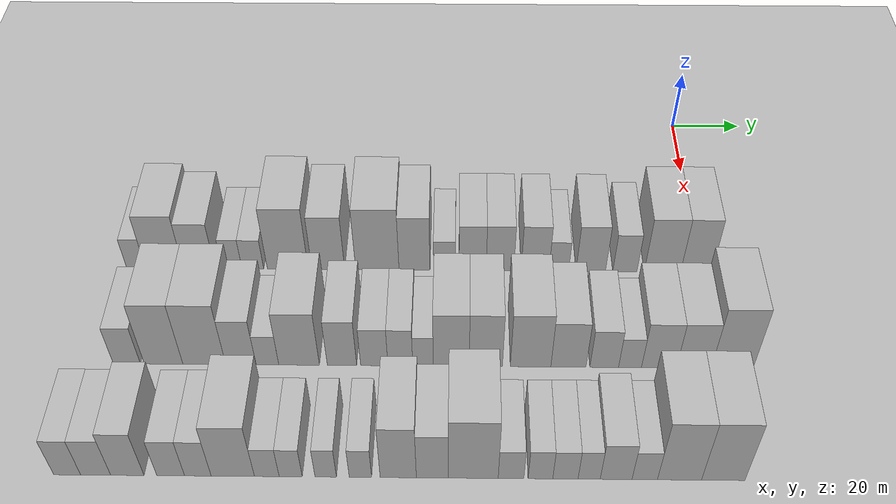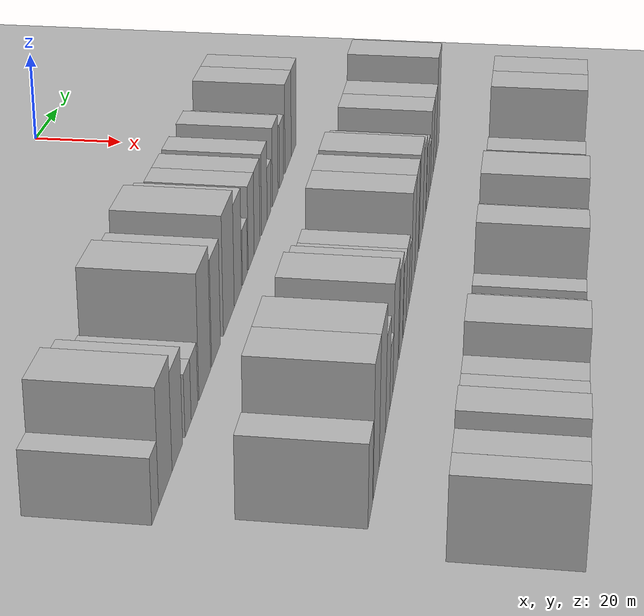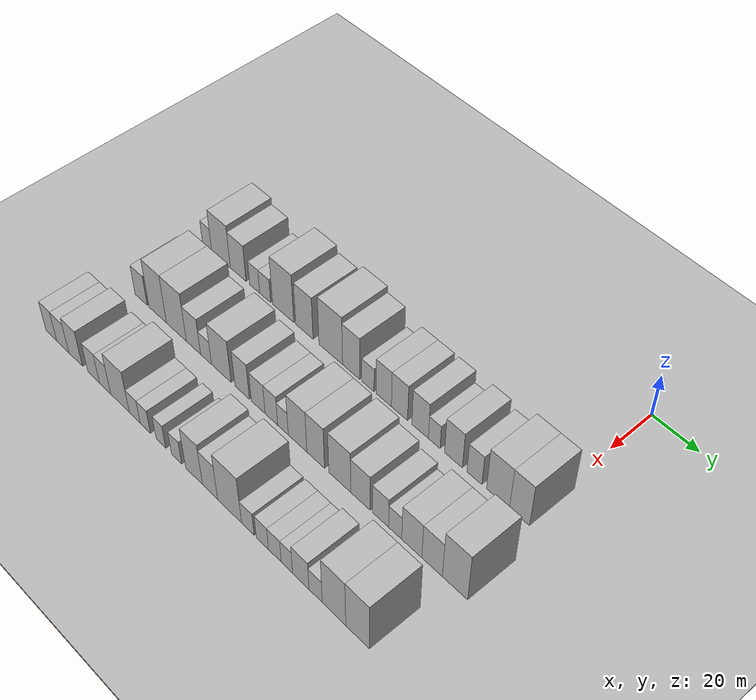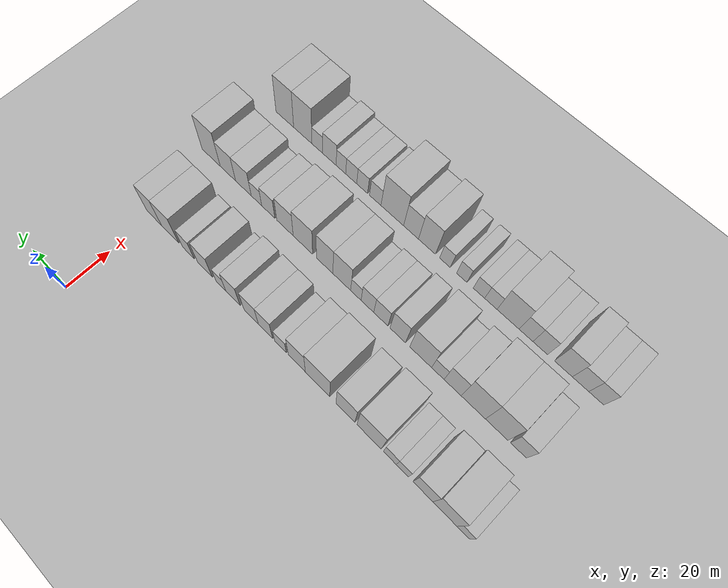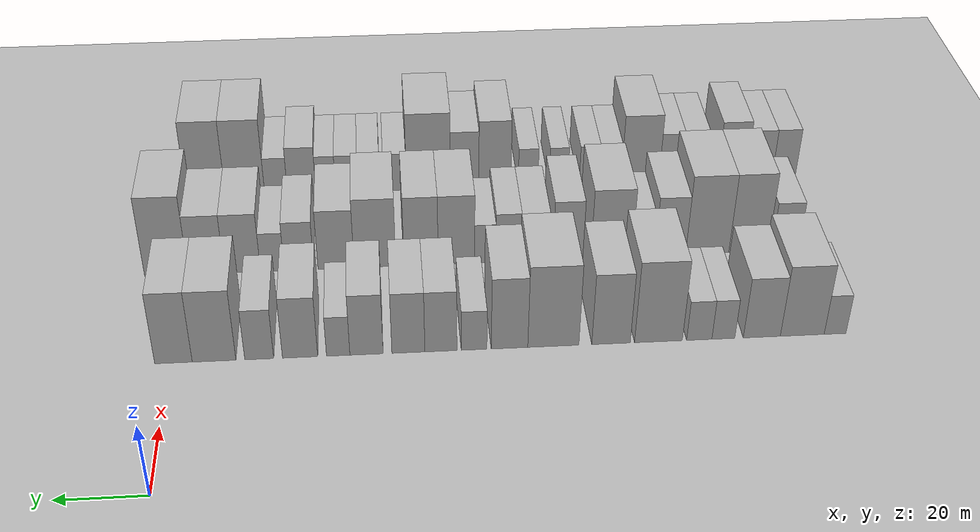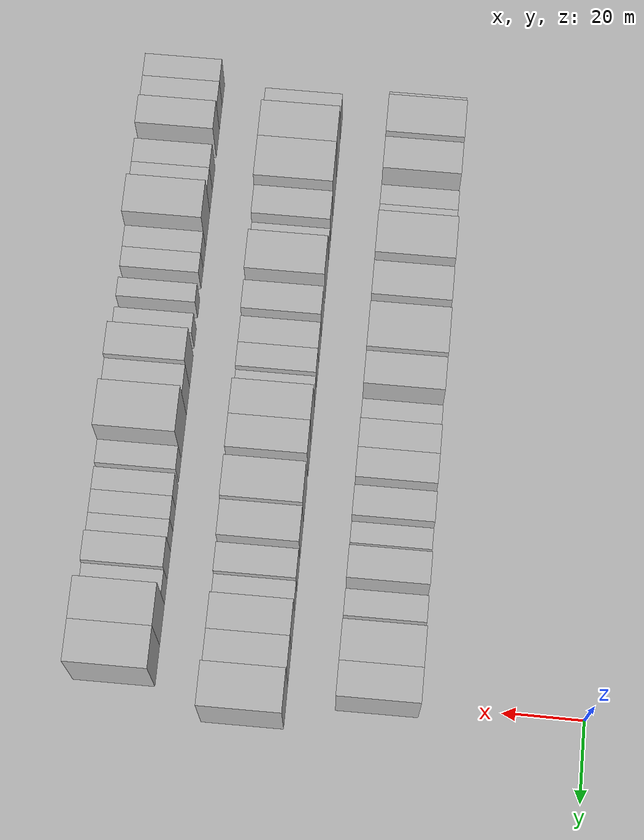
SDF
<sdf version="1.6">
 <world name="default">
  <include><name>ground_plane_1</name><uri>model://HANNAS_ground_plane</uri></include>
  <include>
   <name>ground_plane_2</name>
   <uri>model://HANNAS_ground_plane</uri>
   <pose>100 0 0  0 0 0</pose>
  </include>
  <model name="building_20">
   <static>1</static>
   <pose>50.0000 -154.2095 0 0.000000 0.000000 0.000000</pose>
   <link name="link">
    <pose>0 0 6.00 0 0 0</pose>
    <collision name="collision"><geometry><box><size>20.0000 5.1648 12.0000</size></box></geometry></collision>
    <visual name="visual">
     <cast_shadows>0</cast_shadows>
     <geometry><box><size>20.0000 5.1648 12.0000</size></box></geometry>
     <material>
      <script>
       <uri>model://HANNAS_wall/materials/scripts</uri>
       <uri>model://HANNAS_wall/materials/textures</uri>
       <name>vrc/HANNAS_wall</name>
      </script>
     </material>
    </visual>
   </link>
  </model>
  <model name="building_21">
   <static>1</static>
   <pose>50.0000 -146.4476 0 0.000000 0.000000 0.000000</pose>
   <link name="link">
    <pose>0 0 10.50 0 0 0</pose>
    <collision name="collision"><geometry><box><size>20.0000 10.3590 21.0000</size></box></geometry></collision>
    <visual name="visual">
     <cast_shadows>0</cast_shadows>
     <geometry><box><size>20.0000 10.3590 21.0000</size></box></geometry>
     <material>
      <script>
       <uri>model://HANNAS_wall/materials/scripts</uri>
       <uri>model://HANNAS_wall/materials/textures</uri>
       <name>vrc/HANNAS_wall</name>
      </script>
     </material>
    </visual>
   </link>
  </model>
  <model name="building_22">
   <static>1</static>
   <pose>50.0000 -136.9154 0 0.000000 0.000000 0.000000</pose>
   <link name="link">
    <pose>0 0 9.00 0 0 0</pose>
    <collision name="collision"><geometry><box><size>20.0000 8.7054 18.0000</size></box></geometry></collision>
    <visual name="visual">
     <cast_shadows>0</cast_shadows>
     <geometry><box><size>20.0000 8.7054 18.0000</size></box></geometry>
     <material>
      <script>
       <uri>model://HANNAS_wall/materials/scripts</uri>
       <uri>model://HANNAS_wall/materials/textures</uri>
       <name>vrc/HANNAS_wall</name>
      </script>
     </material>
    </visual>
   </link>
  </model>
  <model name="building_23">
   <static>1</static>
   <pose>50.0000 -127.8699 0 0.000000 0.000000 0.000000</pose>
   <link name="link">
    <pose>0 0 6.00 0 0 0</pose>
    <collision name="collision"><geometry><box><size>20.0000 5.3856 12.0000</size></box></geometry></collision>
    <visual name="visual">
     <cast_shadows>0</cast_shadows>
     <geometry><box><size>20.0000 5.3856 12.0000</size></box></geometry>
     <material>
      <script>
       <uri>model://HANNAS_wall/materials/scripts</uri>
       <uri>model://HANNAS_wall/materials/textures</uri>
       <name>vrc/HANNAS_wall</name>
      </script>
     </material>
    </visual>
   </link>
  </model>
  <model name="building_24">
   <static>1</static>
   <pose>50.0000 -122.2185 0 0.000000 0.000000 0.000000</pose>
   <link name="link">
    <pose>0 0 6.00 0 0 0</pose>
    <collision name="collision"><geometry><box><size>20.0000 5.9172 12.0000</size></box></geometry></collision>
    <visual name="visual">
     <cast_shadows>0</cast_shadows>
     <geometry><box><size>20.0000 5.9172 12.0000</size></box></geometry>
     <material>
      <script>
       <uri>model://HANNAS_wall/materials/scripts</uri>
       <uri>model://HANNAS_wall/materials/textures</uri>
       <name>vrc/HANNAS_wall</name>
      </script>
     </material>
    </visual>
   </link>
  </model>
  <model name="building_25">
   <static>1</static>
   <pose>50.0000 -112.6740 0 0.000000 0.000000 0.000000</pose>
   <link name="link">
    <pose>0 0 12.00 0 0 0</pose>
    <collision name="collision"><geometry><box><size>20.0000 11.1717 24.0000</size></box></geometry></collision>
    <visual name="visual">
     <cast_shadows>0</cast_shadows>
     <geometry><box><size>20.0000 11.1717 24.0000</size></box></geometry>
     <material>
      <script>
       <uri>model://HANNAS_wall/materials/scripts</uri>
       <uri>model://HANNAS_wall/materials/textures</uri>
       <name>vrc/HANNAS_wall</name>
      </script>
     </material>
    </visual>
   </link>
  </model>
  <model name="building_26">
   <static>1</static>
   <pose>50.0000 -101.6090 0 0.000000 0.000000 0.000000</pose>
   <link name="link">
    <pose>0 0 10.50 0 0 0</pose>
    <collision name="collision"><geometry><box><size>20.0000 8.9583 21.0000</size></box></geometry></collision>
    <visual name="visual">
     <cast_shadows>0</cast_shadows>
     <geometry><box><size>20.0000 8.9583 21.0000</size></box></geometry>
     <material>
      <script>
       <uri>model://HANNAS_wall/materials/scripts</uri>
       <uri>model://HANNAS_wall/materials/textures</uri>
       <name>vrc/HANNAS_wall</name>
      </script>
     </material>
    </visual>
   </link>
  </model>
  <model name="building_27">
   <static>1</static>
   <pose>50.0000 -88.2075 0 0.000000 0.000000 0.000000</pose>
   <link name="link">
    <pose>0 0 12.00 0 0 0</pose>
    <collision name="collision"><geometry><box><size>20.0000 11.8447 24.0000</size></box></geometry></collision>
    <visual name="visual">
     <cast_shadows>0</cast_shadows>
     <geometry><box><size>20.0000 11.8447 24.0000</size></box></geometry>
     <material>
      <script>
       <uri>model://HANNAS_wall/materials/scripts</uri>
       <uri>model://HANNAS_wall/materials/textures</uri>
       <name>vrc/HANNAS_wall</name>
      </script>
     </material>
    </visual>
   </link>
  </model>
  <model name="building_28">
   <static>1</static>
   <pose>50.0000 -78.0572 0 0.000000 0.000000 0.000000</pose>
   <link name="link">
    <pose>0 0 10.50 0 0 0</pose>
    <collision name="collision"><geometry><box><size>20.0000 8.4559 21.0000</size></box></geometry></collision>
    <visual name="visual">
     <cast_shadows>0</cast_shadows>
     <geometry><box><size>20.0000 8.4559 21.0000</size></box></geometry>
     <material>
      <script>
       <uri>model://HANNAS_wall/materials/scripts</uri>
       <uri>model://HANNAS_wall/materials/textures</uri>
       <name>vrc/HANNAS_wall</name>
      </script>
     </material>
    </visual>
   </link>
  </model>
  <model name="building_29">
   <static>1</static>
   <pose>50.0000 -69.8755 0 0.000000 0.000000 0.000000</pose>
   <link name="link">
    <pose>0 0 6.00 0 0 0</pose>
    <collision name="collision"><geometry><box><size>20.0000 5.9075 12.0000</size></box></geometry></collision>
    <visual name="visual">
     <cast_shadows>0</cast_shadows>
     <geometry><box><size>20.0000 5.9075 12.0000</size></box></geometry>
     <material>
      <script>
       <uri>model://HANNAS_wall/materials/scripts</uri>
       <uri>model://HANNAS_wall/materials/textures</uri>
       <name>vrc/HANNAS_wall</name>
      </script>
     </material>
    </visual>
   </link>
  </model>
  <model name="building_30">
   <static>1</static>
   <pose>50.0000 -62.2348 0 0.000000 0.000000 0.000000</pose>
   <link name="link">
    <pose>0 0 9.00 0 0 0</pose>
    <collision name="collision"><geometry><box><size>20.0000 7.3739 18.0000</size></box></geometry></collision>
    <visual name="visual">
     <cast_shadows>0</cast_shadows>
     <geometry><box><size>20.0000 7.3739 18.0000</size></box></geometry>
     <material>
      <script>
       <uri>model://HANNAS_wall/materials/scripts</uri>
       <uri>model://HANNAS_wall/materials/textures</uri>
       <name>vrc/HANNAS_wall</name>
      </script>
     </material>
    </visual>
   </link>
  </model>
  <model name="building_31">
   <static>1</static>
   <pose>50.0000 -54.7621 0 0.000000 0.000000 0.000000</pose>
   <link name="link">
    <pose>0 0 9.00 0 0 0</pose>
    <collision name="collision"><geometry><box><size>20.0000 7.5714 18.0000</size></box></geometry></collision>
    <visual name="visual">
     <cast_shadows>0</cast_shadows>
     <geometry><box><size>20.0000 7.5714 18.0000</size></box></geometry>
     <material>
      <script>
       <uri>model://HANNAS_wall/materials/scripts</uri>
       <uri>model://HANNAS_wall/materials/textures</uri>
       <name>vrc/HANNAS_wall</name>
      </script>
     </material>
    </visual>
   </link>
  </model>
  <model name="building_32">
   <static>1</static>
   <pose>50.0000 -45.1714 0 0.000000 0.000000 0.000000</pose>
   <link name="link">
    <pose>0 0 9.00 0 0 0</pose>
    <collision name="collision"><geometry><box><size>20.0000 7.6100 18.0000</size></box></geometry></collision>
    <visual name="visual">
     <cast_shadows>0</cast_shadows>
     <geometry><box><size>20.0000 7.6100 18.0000</size></box></geometry>
     <material>
      <script>
       <uri>model://HANNAS_wall/materials/scripts</uri>
       <uri>model://HANNAS_wall/materials/textures</uri>
       <name>vrc/HANNAS_wall</name>
      </script>
     </material>
    </visual>
   </link>
  </model>
  <model name="building_33">
   <static>1</static>
   <pose>50.0000 -38.6933 0 0.000000 0.000000 0.000000</pose>
   <link name="link">
    <pose>0 0 6.00 0 0 0</pose>
    <collision name="collision"><geometry><box><size>20.0000 5.3463 12.0000</size></box></geometry></collision>
    <visual name="visual">
     <cast_shadows>0</cast_shadows>
     <geometry><box><size>20.0000 5.3463 12.0000</size></box></geometry>
     <material>
      <script>
       <uri>model://HANNAS_wall/materials/scripts</uri>
       <uri>model://HANNAS_wall/materials/textures</uri>
       <name>vrc/HANNAS_wall</name>
      </script>
     </material>
    </visual>
   </link>
  </model>
  <model name="building_34">
   <static>1</static>
   <pose>50.0000 -30.0043 0 0.000000 0.000000 0.000000</pose>
   <link name="link">
    <pose>0 0 9.00 0 0 0</pose>
    <collision name="collision"><geometry><box><size>20.0000 8.0316 18.0000</size></box></geometry></collision>
    <visual name="visual">
     <cast_shadows>0</cast_shadows>
     <geometry><box><size>20.0000 8.0316 18.0000</size></box></geometry>
     <material>
      <script>
       <uri>model://HANNAS_wall/materials/scripts</uri>
       <uri>model://HANNAS_wall/materials/textures</uri>
       <name>vrc/HANNAS_wall</name>
      </script>
     </material>
    </visual>
   </link>
  </model>
  <model name="building_35">
   <static>1</static>
   <pose>50.0000 -20.7029 0 0.000000 0.000000 0.000000</pose>
   <link name="link">
    <pose>0 0 7.50 0 0 0</pose>
    <collision name="collision"><geometry><box><size>20.0000 6.5713 15.0000</size></box></geometry></collision>
    <visual name="visual">
     <cast_shadows>0</cast_shadows>
     <geometry><box><size>20.0000 6.5713 15.0000</size></box></geometry>
     <material>
      <script>
       <uri>model://HANNAS_wall/materials/scripts</uri>
       <uri>model://HANNAS_wall/materials/textures</uri>
       <name>vrc/HANNAS_wall</name>
      </script>
     </material>
    </visual>
   </link>
  </model>
  <model name="building_36">
   <static>1</static>
   <pose>50.0000 -10.4698 0 0.000000 0.000000 0.000000</pose>
   <link name="link">
    <pose>0 0 10.50 0 0 0</pose>
    <collision name="collision"><geometry><box><size>20.0000 9.8949 21.0000</size></box></geometry></collision>
    <visual name="visual">
     <cast_shadows>0</cast_shadows>
     <geometry><box><size>20.0000 9.8949 21.0000</size></box></geometry>
     <material>
      <script>
       <uri>model://HANNAS_wall/materials/scripts</uri>
       <uri>model://HANNAS_wall/materials/textures</uri>
       <name>vrc/HANNAS_wall</name>
      </script>
     </material>
    </visual>
   </link>
  </model>
  <model name="building_37">
   <static>1</static>
   <pose>50.0000 -1.2832 0 0.000000 0.000000 0.000000</pose>
   <link name="link">
    <pose>0 0 10.50 0 0 0</pose>
    <collision name="collision"><geometry><box><size>20.0000 8.4783 21.0000</size></box></geometry></collision>
    <visual name="visual">
     <cast_shadows>0</cast_shadows>
     <geometry><box><size>20.0000 8.4783 21.0000</size></box></geometry>
     <material>
      <script>
       <uri>model://HANNAS_wall/materials/scripts</uri>
       <uri>model://HANNAS_wall/materials/textures</uri>
       <name>vrc/HANNAS_wall</name>
      </script>
     </material>
    </visual>
   </link>
  </model>
  <model name="building_99">
   <static>1</static>
   <pose>82.0000 -150.1094 0 0.000000 0.000000 0.000000</pose>
   <link name="link">
    <pose>0 0 7.50 0 0 0</pose>
    <collision name="collision"><geometry><box><size>20.0000 6.9044 15.0000</size></box></geometry></collision>
    <visual name="visual">
     <cast_shadows>0</cast_shadows>
     <geometry><box><size>20.0000 6.9044 15.0000</size></box></geometry>
     <material>
      <script>
       <uri>model://HANNAS_wall/materials/scripts</uri>
       <uri>model://HANNAS_wall/materials/textures</uri>
       <name>vrc/HANNAS_wall</name>
      </script>
     </material>
    </visual>
   </link>
  </model>
  <model name="building_100">
   <static>1</static>
   <pose>82.0000 -140.7523 0 0.000000 0.000000 0.000000</pose>
   <link name="link">
    <pose>0 0 12.00 0 0 0</pose>
    <collision name="collision"><geometry><box><size>20.0000 9.8098 24.0000</size></box></geometry></collision>
    <visual name="visual">
     <cast_shadows>0</cast_shadows>
     <geometry><box><size>20.0000 9.8098 24.0000</size></box></geometry>
     <material>
      <script>
       <uri>model://HANNAS_wall/materials/scripts</uri>
       <uri>model://HANNAS_wall/materials/textures</uri>
       <name>vrc/HANNAS_wall</name>
      </script>
     </material>
    </visual>
   </link>
  </model>
  <model name="building_101">
   <static>1</static>
   <pose>82.0000 -130.4008 0 0.000000 0.000000 0.000000</pose>
   <link name="link">
    <pose>0 0 12.00 0 0 0</pose>
    <collision name="collision"><geometry><box><size>20.0000 10.8930 24.0000</size></box></geometry></collision>
    <visual name="visual">
     <cast_shadows>0</cast_shadows>
     <geometry><box><size>20.0000 10.8930 24.0000</size></box></geometry>
     <material>
      <script>
       <uri>model://HANNAS_wall/materials/scripts</uri>
       <uri>model://HANNAS_wall/materials/textures</uri>
       <name>vrc/HANNAS_wall</name>
      </script>
     </material>
    </visual>
   </link>
  </model>
  <model name="building_102">
   <static>1</static>
   <pose>82.0000 -121.0931 0 0.000000 0.000000 0.000000</pose>
   <link name="link">
    <pose>0 0 9.00 0 0 0</pose>
    <collision name="collision"><geometry><box><size>20.0000 7.7226 18.0000</size></box></geometry></collision>
    <visual name="visual">
     <cast_shadows>0</cast_shadows>
     <geometry><box><size>20.0000 7.7226 18.0000</size></box></geometry>
     <material>
      <script>
       <uri>model://HANNAS_wall/materials/scripts</uri>
       <uri>model://HANNAS_wall/materials/textures</uri>
       <name>vrc/HANNAS_wall</name>
      </script>
     </material>
    </visual>
   </link>
  </model>
  <model name="building_103">
   <static>1</static>
   <pose>82.0000 -114.3561 0 0.000000 0.000000 0.000000</pose>
   <link name="link">
    <pose>0 0 6.00 0 0 0</pose>
    <collision name="collision"><geometry><box><size>20.0000 5.7513 12.0000</size></box></geometry></collision>
    <visual name="visual">
     <cast_shadows>0</cast_shadows>
     <geometry><box><size>20.0000 5.7513 12.0000</size></box></geometry>
     <material>
      <script>
       <uri>model://HANNAS_wall/materials/scripts</uri>
       <uri>model://HANNAS_wall/materials/textures</uri>
       <name>vrc/HANNAS_wall</name>
      </script>
     </material>
    </visual>
   </link>
  </model>
  <model name="building_104">
   <static>1</static>
   <pose>82.0000 -106.3276 0 0.000000 0.000000 0.000000</pose>
   <link name="link">
    <pose>0 0 10.50 0 0 0</pose>
    <collision name="collision"><geometry><box><size>20.0000 10.3056 21.0000</size></box></geometry></collision>
    <visual name="visual">
     <cast_shadows>0</cast_shadows>
     <geometry><box><size>20.0000 10.3056 21.0000</size></box></geometry>
     <material>
      <script>
       <uri>model://HANNAS_wall/materials/scripts</uri>
       <uri>model://HANNAS_wall/materials/textures</uri>
       <name>vrc/HANNAS_wall</name>
      </script>
     </material>
    </visual>
   </link>
  </model>
  <model name="building_105">
   <static>1</static>
   <pose>82.0000 -95.4445 0 0.000000 0.000000 0.000000</pose>
   <link name="link">
    <pose>0 0 9.00 0 0 0</pose>
    <collision name="collision"><geometry><box><size>20.0000 7.4608 18.0000</size></box></geometry></collision>
    <visual name="visual">
     <cast_shadows>0</cast_shadows>
     <geometry><box><size>20.0000 7.4608 18.0000</size></box></geometry>
     <material>
      <script>
       <uri>model://HANNAS_wall/materials/scripts</uri>
       <uri>model://HANNAS_wall/materials/textures</uri>
       <name>vrc/HANNAS_wall</name>
      </script>
     </material>
    </visual>
   </link>
  </model>
  <model name="building_106">
   <static>1</static>
   <pose>82.0000 -87.2612 0 0.000000 0.000000 0.000000</pose>
   <link name="link">
    <pose>0 0 7.50 0 0 0</pose>
    <collision name="collision"><geometry><box><size>20.0000 6.9058 15.0000</size></box></geometry></collision>
    <visual name="visual">
     <cast_shadows>0</cast_shadows>
     <geometry><box><size>20.0000 6.9058 15.0000</size></box></geometry>
     <material>
      <script>
       <uri>model://HANNAS_wall/materials/scripts</uri>
       <uri>model://HANNAS_wall/materials/textures</uri>
       <name>vrc/HANNAS_wall</name>
      </script>
     </material>
    </visual>
   </link>
  </model>
  <model name="building_107">
   <static>1</static>
   <pose>82.0000 -80.6620 0 0.000000 0.000000 0.000000</pose>
   <link name="link">
    <pose>0 0 7.50 0 0 0</pose>
    <collision name="collision"><geometry><box><size>20.0000 6.2925 15.0000</size></box></geometry></collision>
    <visual name="visual">
     <cast_shadows>0</cast_shadows>
     <geometry><box><size>20.0000 6.2925 15.0000</size></box></geometry>
     <material>
      <script>
       <uri>model://HANNAS_wall/materials/scripts</uri>
       <uri>model://HANNAS_wall/materials/textures</uri>
       <name>vrc/HANNAS_wall</name>
      </script>
     </material>
    </visual>
   </link>
  </model>
  <model name="building_108">
   <static>1</static>
   <pose>82.0000 -74.8959 0 0.000000 0.000000 0.000000</pose>
   <link name="link">
    <pose>0 0 6.00 0 0 0</pose>
    <collision name="collision"><geometry><box><size>20.0000 5.2398 12.0000</size></box></geometry></collision>
    <visual name="visual">
     <cast_shadows>0</cast_shadows>
     <geometry><box><size>20.0000 5.2398 12.0000</size></box></geometry>
     <material>
      <script>
       <uri>model://HANNAS_wall/materials/scripts</uri>
       <uri>model://HANNAS_wall/materials/textures</uri>
       <name>vrc/HANNAS_wall</name>
      </script>
     </material>
    </visual>
   </link>
  </model>
  <model name="building_109">
   <static>1</static>
   <pose>82.0000 -67.7616 0 0.000000 0.000000 0.000000</pose>
   <link name="link">
    <pose>0 0 10.50 0 0 0</pose>
    <collision name="collision"><geometry><box><size>20.0000 9.0289 21.0000</size></box></geometry></collision>
    <visual name="visual">
     <cast_shadows>0</cast_shadows>
     <geometry><box><size>20.0000 9.0289 21.0000</size></box></geometry>
     <material>
      <script>
       <uri>model://HANNAS_wall/materials/scripts</uri>
       <uri>model://HANNAS_wall/materials/textures</uri>
       <name>vrc/HANNAS_wall</name>
      </script>
     </material>
    </visual>
   </link>
  </model>
  <model name="building_110">
   <static>1</static>
   <pose>82.0000 -59.0219 0 0.000000 0.000000 0.000000</pose>
   <link name="link">
    <pose>0 0 10.50 0 0 0</pose>
    <collision name="collision"><geometry><box><size>20.0000 8.4504 21.0000</size></box></geometry></collision>
    <visual name="visual">
     <cast_shadows>0</cast_shadows>
     <geometry><box><size>20.0000 8.4504 21.0000</size></box></geometry>
     <material>
      <script>
       <uri>model://HANNAS_wall/materials/scripts</uri>
       <uri>model://HANNAS_wall/materials/textures</uri>
       <name>vrc/HANNAS_wall</name>
      </script>
     </material>
    </visual>
   </link>
  </model>
  <model name="building_111">
   <static>1</static>
   <pose>82.0000 -47.6660 0 0.000000 0.000000 0.000000</pose>
   <link name="link">
    <pose>0 0 10.50 0 0 0</pose>
    <collision name="collision"><geometry><box><size>20.0000 10.2613 21.0000</size></box></geometry></collision>
    <visual name="visual">
     <cast_shadows>0</cast_shadows>
     <geometry><box><size>20.0000 10.2613 21.0000</size></box></geometry>
     <material>
      <script>
       <uri>model://HANNAS_wall/materials/scripts</uri>
       <uri>model://HANNAS_wall/materials/textures</uri>
       <name>vrc/HANNAS_wall</name>
      </script>
     </material>
    </visual>
   </link>
  </model>
  <model name="building_112">
   <static>1</static>
   <pose>82.0000 -38.0944 0 0.000000 0.000000 0.000000</pose>
   <link name="link">
    <pose>0 0 9.00 0 0 0</pose>
    <collision name="collision"><geometry><box><size>20.0000 8.8819 18.0000</size></box></geometry></collision>
    <visual name="visual">
     <cast_shadows>0</cast_shadows>
     <geometry><box><size>20.0000 8.8819 18.0000</size></box></geometry>
     <material>
      <script>
       <uri>model://HANNAS_wall/materials/scripts</uri>
       <uri>model://HANNAS_wall/materials/textures</uri>
       <name>vrc/HANNAS_wall</name>
      </script>
     </material>
    </visual>
   </link>
  </model>
  <model name="building_113">
   <static>1</static>
   <pose>82.0000 -29.0368 0 0.000000 0.000000 0.000000</pose>
   <link name="link">
    <pose>0 0 7.50 0 0 0</pose>
    <collision name="collision"><geometry><box><size>20.0000 7.2332 15.0000</size></box></geometry></collision>
    <visual name="visual">
     <cast_shadows>0</cast_shadows>
     <geometry><box><size>20.0000 7.2332 15.0000</size></box></geometry>
     <material>
      <script>
       <uri>model://HANNAS_wall/materials/scripts</uri>
       <uri>model://HANNAS_wall/materials/textures</uri>
       <name>vrc/HANNAS_wall</name>
      </script>
     </material>
    </visual>
   </link>
  </model>
  <model name="building_114">
   <static>1</static>
   <pose>82.0000 -22.5172 0 0.000000 0.000000 0.000000</pose>
   <link name="link">
    <pose>0 0 6.00 0 0 0</pose>
    <collision name="collision"><geometry><box><size>20.0000 5.8062 12.0000</size></box></geometry></collision>
    <visual name="visual">
     <cast_shadows>0</cast_shadows>
     <geometry><box><size>20.0000 5.8062 12.0000</size></box></geometry>
     <material>
      <script>
       <uri>model://HANNAS_wall/materials/scripts</uri>
       <uri>model://HANNAS_wall/materials/textures</uri>
       <name>vrc/HANNAS_wall</name>
      </script>
     </material>
    </visual>
   </link>
  </model>
  <model name="building_115">
   <static>1</static>
   <pose>82.0000 -15.2074 0 0.000000 0.000000 0.000000</pose>
   <link name="link">
    <pose>0 0 9.00 0 0 0</pose>
    <collision name="collision"><geometry><box><size>20.0000 8.8133 18.0000</size></box></geometry></collision>
    <visual name="visual">
     <cast_shadows>0</cast_shadows>
     <geometry><box><size>20.0000 8.8133 18.0000</size></box></geometry>
     <material>
      <script>
       <uri>model://HANNAS_wall/materials/scripts</uri>
       <uri>model://HANNAS_wall/materials/textures</uri>
       <name>vrc/HANNAS_wall</name>
      </script>
     </material>
    </visual>
   </link>
  </model>
  <model name="building_116">
   <static>1</static>
   <pose>82.0000 -6.4000 0 0.000000 0.000000 0.000000</pose>
   <link name="link">
    <pose>0 0 9.00 0 0 0</pose>
    <collision name="collision"><geometry><box><size>20.0000 8.8016 18.0000</size></box></geometry></collision>
    <visual name="visual">
     <cast_shadows>0</cast_shadows>
     <geometry><box><size>20.0000 8.8016 18.0000</size></box></geometry>
     <material>
      <script>
       <uri>model://HANNAS_wall/materials/scripts</uri>
       <uri>model://HANNAS_wall/materials/textures</uri>
       <name>vrc/HANNAS_wall</name>
      </script>
     </material>
    </visual>
   </link>
  </model>
  <model name="building_117">
   <static>1</static>
   <pose>82.0000 3.2998 0 0.000000 0.000000 0.000000</pose>
   <link name="link">
    <pose>0 0 12.00 0 0 0</pose>
    <collision name="collision"><geometry><box><size>20.0000 10.5979 24.0000</size></box></geometry></collision>
    <visual name="visual">
     <cast_shadows>0</cast_shadows>
     <geometry><box><size>20.0000 10.5979 24.0000</size></box></geometry>
     <material>
      <script>
       <uri>model://HANNAS_wall/materials/scripts</uri>
       <uri>model://HANNAS_wall/materials/textures</uri>
       <name>vrc/HANNAS_wall</name>
      </script>
     </material>
    </visual>
   </link>
  </model>
  <model name="building_175">
   <static>1</static>
   <pose>114.0000 -157.4516 0 0.000000 0.000000 0.000000</pose>
   <link name="link">
    <pose>0 0 7.50 0 0 0</pose>
    <collision name="collision"><geometry><box><size>20.0000 6.3310 15.0000</size></box></geometry></collision>
    <visual name="visual">
     <cast_shadows>0</cast_shadows>
     <geometry><box><size>20.0000 6.3310 15.0000</size></box></geometry>
     <material>
      <script>
       <uri>model://HANNAS_wall/materials/scripts</uri>
       <uri>model://HANNAS_wall/materials/textures</uri>
       <name>vrc/HANNAS_wall</name>
      </script>
     </material>
    </visual>
   </link>
  </model>
  <model name="building_176">
   <static>1</static>
   <pose>114.0000 -150.7712 0 0.000000 0.000000 0.000000</pose>
   <link name="link">
    <pose>0 0 7.50 0 0 0</pose>
    <collision name="collision"><geometry><box><size>20.0000 7.0297 15.0000</size></box></geometry></collision>
    <visual name="visual">
     <cast_shadows>0</cast_shadows>
     <geometry><box><size>20.0000 7.0297 15.0000</size></box></geometry>
     <material>
      <script>
       <uri>model://HANNAS_wall/materials/scripts</uri>
       <uri>model://HANNAS_wall/materials/textures</uri>
       <name>vrc/HANNAS_wall</name>
      </script>
     </material>
    </visual>
   </link>
  </model>
  <model name="building_177">
   <static>1</static>
   <pose>114.0000 -143.3449 0 0.000000 0.000000 0.000000</pose>
   <link name="link">
    <pose>0 0 9.00 0 0 0</pose>
    <collision name="collision"><geometry><box><size>20.0000 7.8231 18.0000</size></box></geometry></collision>
    <visual name="visual">
     <cast_shadows>0</cast_shadows>
     <geometry><box><size>20.0000 7.8231 18.0000</size></box></geometry>
     <material>
      <script>
       <uri>model://HANNAS_wall/materials/scripts</uri>
       <uri>model://HANNAS_wall/materials/textures</uri>
       <name>vrc/HANNAS_wall</name>
      </script>
     </material>
    </visual>
   </link>
  </model>
  <model name="building_178">
   <static>1</static>
   <pose>114.0000 -133.1772 0 0.000000 0.000000 0.000000</pose>
   <link name="link">
    <pose>0 0 7.50 0 0 0</pose>
    <collision name="collision"><geometry><box><size>20.0000 6.5122 15.0000</size></box></geometry></collision>
    <visual name="visual">
     <cast_shadows>0</cast_shadows>
     <geometry><box><size>20.0000 6.5122 15.0000</size></box></geometry>
     <material>
      <script>
       <uri>model://HANNAS_wall/materials/scripts</uri>
       <uri>model://HANNAS_wall/materials/textures</uri>
       <name>vrc/HANNAS_wall</name>
      </script>
     </material>
    </visual>
   </link>
  </model>
  <model name="building_179">
   <static>1</static>
   <pose>114.0000 -126.8048 0 0.000000 0.000000 0.000000</pose>
   <link name="link">
    <pose>0 0 7.50 0 0 0</pose>
    <collision name="collision"><geometry><box><size>20.0000 6.2327 15.0000</size></box></geometry></collision>
    <visual name="visual">
     <cast_shadows>0</cast_shadows>
     <geometry><box><size>20.0000 6.2327 15.0000</size></box></geometry>
     <material>
      <script>
       <uri>model://HANNAS_wall/materials/scripts</uri>
       <uri>model://HANNAS_wall/materials/textures</uri>
       <name>vrc/HANNAS_wall</name>
      </script>
     </material>
    </visual>
   </link>
  </model>
  <model name="building_180">
   <static>1</static>
   <pose>114.0000 -118.6157 0 0.000000 0.000000 0.000000</pose>
   <link name="link">
    <pose>0 0 10.50 0 0 0</pose>
    <collision name="collision"><geometry><box><size>20.0000 10.1454 21.0000</size></box></geometry></collision>
    <visual name="visual">
     <cast_shadows>0</cast_shadows>
     <geometry><box><size>20.0000 10.1454 21.0000</size></box></geometry>
     <material>
      <script>
       <uri>model://HANNAS_wall/materials/scripts</uri>
       <uri>model://HANNAS_wall/materials/textures</uri>
       <name>vrc/HANNAS_wall</name>
      </script>
     </material>
    </visual>
   </link>
  </model>
  <model name="building_181">
   <static>1</static>
   <pose>114.0000 -110.6428 0 0.000000 0.000000 0.000000</pose>
   <link name="link">
    <pose>0 0 6.00 0 0 0</pose>
    <collision name="collision"><geometry><box><size>20.0000 5.8006 12.0000</size></box></geometry></collision>
    <visual name="visual">
     <cast_shadows>0</cast_shadows>
     <geometry><box><size>20.0000 5.8006 12.0000</size></box></geometry>
     <material>
      <script>
       <uri>model://HANNAS_wall/materials/scripts</uri>
       <uri>model://HANNAS_wall/materials/textures</uri>
       <name>vrc/HANNAS_wall</name>
      </script>
     </material>
    </visual>
   </link>
  </model>
  <model name="building_182">
   <static>1</static>
   <pose>114.0000 -105.0446 0 0.000000 0.000000 0.000000</pose>
   <link name="link">
    <pose>0 0 6.00 0 0 0</pose>
    <collision name="collision"><geometry><box><size>20.0000 5.3958 12.0000</size></box></geometry></collision>
    <visual name="visual">
     <cast_shadows>0</cast_shadows>
     <geometry><box><size>20.0000 5.3958 12.0000</size></box></geometry>
     <material>
      <script>
       <uri>model://HANNAS_wall/materials/scripts</uri>
       <uri>model://HANNAS_wall/materials/textures</uri>
       <name>vrc/HANNAS_wall</name>
      </script>
     </material>
    </visual>
   </link>
  </model>
  <model name="building_183">
   <static>1</static>
   <pose>114.0000 -96.8426 0 0.000000 0.000000 0.000000</pose>
   <link name="link">
    <pose>0 0 6.00 0 0 0</pose>
    <collision name="collision"><geometry><box><size>20.0000 5.0082 12.0000</size></box></geometry></collision>
    <visual name="visual">
     <cast_shadows>0</cast_shadows>
     <geometry><box><size>20.0000 5.0082 12.0000</size></box></geometry>
     <material>
      <script>
       <uri>model://HANNAS_wall/materials/scripts</uri>
       <uri>model://HANNAS_wall/materials/textures</uri>
       <name>vrc/HANNAS_wall</name>
      </script>
     </material>
    </visual>
   </link>
  </model>
  <model name="building_184">
   <static>1</static>
   <pose>114.0000 -88.7214 0 0.000000 0.000000 0.000000</pose>
   <link name="link">
    <pose>0 0 6.00 0 0 0</pose>
    <collision name="collision"><geometry><box><size>20.0000 5.2343 12.0000</size></box></geometry></collision>
    <visual name="visual">
     <cast_shadows>0</cast_shadows>
     <geometry><box><size>20.0000 5.2343 12.0000</size></box></geometry>
     <material>
      <script>
       <uri>model://HANNAS_wall/materials/scripts</uri>
       <uri>model://HANNAS_wall/materials/textures</uri>
       <name>vrc/HANNAS_wall</name>
      </script>
     </material>
    </visual>
   </link>
  </model>
  <model name="building_185">
   <static>1</static>
   <pose>114.0000 -79.8725 0 0.000000 0.000000 0.000000</pose>
   <link name="link">
    <pose>0 0 10.50 0 0 0</pose>
    <collision name="collision"><geometry><box><size>20.0000 8.4635 21.0000</size></box></geometry></collision>
    <visual name="visual">
     <cast_shadows>0</cast_shadows>
     <geometry><box><size>20.0000 8.4635 21.0000</size></box></geometry>
     <material>
      <script>
       <uri>model://HANNAS_wall/materials/scripts</uri>
       <uri>model://HANNAS_wall/materials/textures</uri>
       <name>vrc/HANNAS_wall</name>
      </script>
     </material>
    </visual>
   </link>
  </model>
  <model name="building_186">
   <static>1</static>
   <pose>114.0000 -71.8975 0 0.000000 0.000000 0.000000</pose>
   <link name="link">
    <pose>0 0 9.00 0 0 0</pose>
    <collision name="collision"><geometry><box><size>20.0000 7.4864 18.0000</size></box></geometry></collision>
    <visual name="visual">
     <cast_shadows>0</cast_shadows>
     <geometry><box><size>20.0000 7.4864 18.0000</size></box></geometry>
     <material>
      <script>
       <uri>model://HANNAS_wall/materials/scripts</uri>
       <uri>model://HANNAS_wall/materials/textures</uri>
       <name>vrc/HANNAS_wall</name>
      </script>
     </material>
    </visual>
   </link>
  </model>
  <model name="building_187">
   <static>1</static>
   <pose>114.0000 -62.3316 0 0.000000 0.000000 0.000000</pose>
   <link name="link">
    <pose>0 0 12.00 0 0 0</pose>
    <collision name="collision"><geometry><box><size>20.0000 11.6454 24.0000</size></box></geometry></collision>
    <visual name="visual">
     <cast_shadows>0</cast_shadows>
     <geometry><box><size>20.0000 11.6454 24.0000</size></box></geometry>
     <material>
      <script>
       <uri>model://HANNAS_wall/materials/scripts</uri>
       <uri>model://HANNAS_wall/materials/textures</uri>
       <name>vrc/HANNAS_wall</name>
      </script>
     </material>
    </visual>
   </link>
  </model>
  <model name="building_188">
   <static>1</static>
   <pose>114.0000 -53.5116 0 0.000000 0.000000 0.000000</pose>
   <link name="link">
    <pose>0 0 6.00 0 0 0</pose>
    <collision name="collision"><geometry><box><size>20.0000 5.9947 12.0000</size></box></geometry></collision>
    <visual name="visual">
     <cast_shadows>0</cast_shadows>
     <geometry><box><size>20.0000 5.9947 12.0000</size></box></geometry>
     <material>
      <script>
       <uri>model://HANNAS_wall/materials/scripts</uri>
       <uri>model://HANNAS_wall/materials/textures</uri>
       <name>vrc/HANNAS_wall</name>
      </script>
     </material>
    </visual>
   </link>
  </model>
  <model name="building_189">
   <static>1</static>
   <pose>114.0000 -46.6390 0 0.000000 0.000000 0.000000</pose>
   <link name="link">
    <pose>0 0 6.00 0 0 0</pose>
    <collision name="collision"><geometry><box><size>20.0000 5.7504 12.0000</size></box></geometry></collision>
    <visual name="visual">
     <cast_shadows>0</cast_shadows>
     <geometry><box><size>20.0000 5.7504 12.0000</size></box></geometry>
     <material>
      <script>
       <uri>model://HANNAS_wall/materials/scripts</uri>
       <uri>model://HANNAS_wall/materials/textures</uri>
       <name>vrc/HANNAS_wall</name>
      </script>
     </material>
    </visual>
   </link>
  </model>
  <model name="building_190">
   <static>1</static>
   <pose>114.0000 -40.8129 0 0.000000 0.000000 0.000000</pose>
   <link name="link">
    <pose>0 0 6.00 0 0 0</pose>
    <collision name="collision"><geometry><box><size>20.0000 5.9019 12.0000</size></box></geometry></collision>
    <visual name="visual">
     <cast_shadows>0</cast_shadows>
     <geometry><box><size>20.0000 5.9019 12.0000</size></box></geometry>
     <material>
      <script>
       <uri>model://HANNAS_wall/materials/scripts</uri>
       <uri>model://HANNAS_wall/materials/textures</uri>
       <name>vrc/HANNAS_wall</name>
      </script>
     </material>
    </visual>
   </link>
  </model>
  <model name="building_191">
   <static>1</static>
   <pose>114.0000 -35.2775 0 0.000000 0.000000 0.000000</pose>
   <link name="link">
    <pose>0 0 6.00 0 0 0</pose>
    <collision name="collision"><geometry><box><size>20.0000 5.1689 12.0000</size></box></geometry></collision>
    <visual name="visual">
     <cast_shadows>0</cast_shadows>
     <geometry><box><size>20.0000 5.1689 12.0000</size></box></geometry>
     <material>
      <script>
       <uri>model://HANNAS_wall/materials/scripts</uri>
       <uri>model://HANNAS_wall/materials/textures</uri>
       <name>vrc/HANNAS_wall</name>
      </script>
     </material>
    </visual>
   </link>
  </model>
  <model name="building_192">
   <static>1</static>
   <pose>114.0000 -28.9803 0 0.000000 0.000000 0.000000</pose>
   <link name="link">
    <pose>0 0 7.50 0 0 0</pose>
    <collision name="collision"><geometry><box><size>20.0000 7.4255 15.0000</size></box></geometry></collision>
    <visual name="visual">
     <cast_shadows>0</cast_shadows>
     <geometry><box><size>20.0000 7.4255 15.0000</size></box></geometry>
     <material>
      <script>
       <uri>model://HANNAS_wall/materials/scripts</uri>
       <uri>model://HANNAS_wall/materials/textures</uri>
       <name>vrc/HANNAS_wall</name>
      </script>
     </material>
    </visual>
   </link>
  </model>
  <model name="building_193">
   <static>1</static>
   <pose>114.0000 -22.3007 0 0.000000 0.000000 0.000000</pose>
   <link name="link">
    <pose>0 0 6.00 0 0 0</pose>
    <collision name="collision"><geometry><box><size>20.0000 5.9336 12.0000</size></box></geometry></collision>
    <visual name="visual">
     <cast_shadows>0</cast_shadows>
     <geometry><box><size>20.0000 5.9336 12.0000</size></box></geometry>
     <material>
      <script>
       <uri>model://HANNAS_wall/materials/scripts</uri>
       <uri>model://HANNAS_wall/materials/textures</uri>
       <name>vrc/HANNAS_wall</name>
      </script>
     </material>
    </visual>
   </link>
  </model>
  <model name="building_194">
   <static>1</static>
   <pose>114.0000 -14.1937 0 0.000000 0.000000 0.000000</pose>
   <link name="link">
    <pose>0 0 12.00 0 0 0</pose>
    <collision name="collision"><geometry><box><size>20.0000 10.2804 24.0000</size></box></geometry></collision>
    <visual name="visual">
     <cast_shadows>0</cast_shadows>
     <geometry><box><size>20.0000 10.2804 24.0000</size></box></geometry>
     <material>
      <script>
       <uri>model://HANNAS_wall/materials/scripts</uri>
       <uri>model://HANNAS_wall/materials/textures</uri>
       <name>vrc/HANNAS_wall</name>
      </script>
     </material>
    </visual>
   </link>
  </model>
  <model name="building_195">
   <static>1</static>
   <pose>114.0000 -3.9838 0 0.000000 0.000000 0.000000</pose>
   <link name="link">
    <pose>0 0 12.00 0 0 0</pose>
    <collision name="collision"><geometry><box><size>20.0000 10.1394 24.0000</size></box></geometry></collision>
    <visual name="visual">
     <cast_shadows>0</cast_shadows>
     <geometry><box><size>20.0000 10.1394 24.0000</size></box></geometry>
     <material>
      <script>
       <uri>model://HANNAS_wall/materials/scripts</uri>
       <uri>model://HANNAS_wall/materials/textures</uri>
       <name>vrc/HANNAS_wall</name>
      </script>
     </material>
    </visual>
   </link>
  </model>
 </world>
</sdf>
